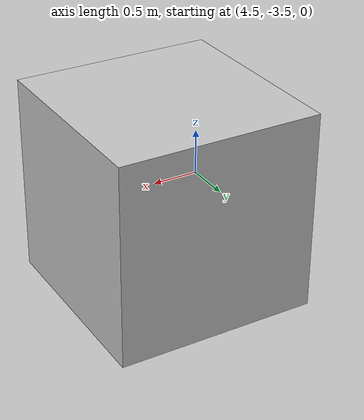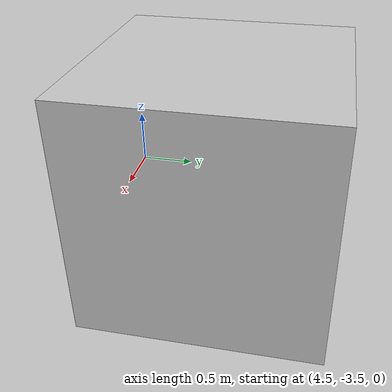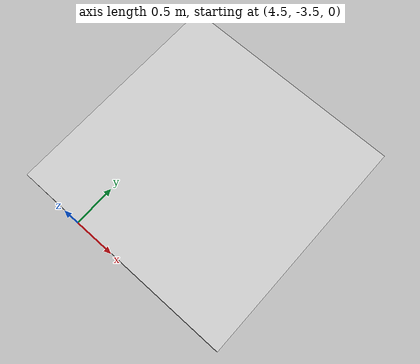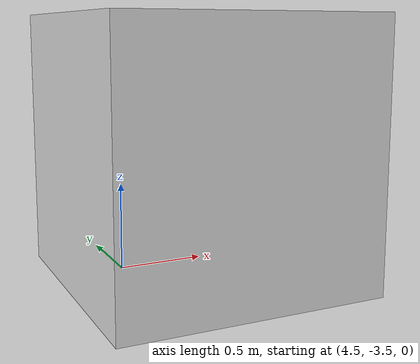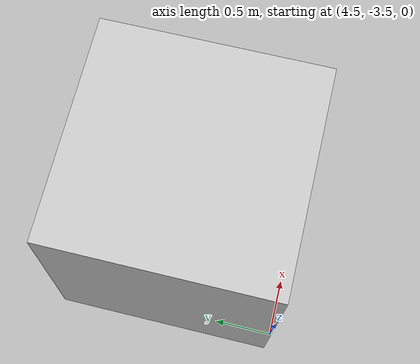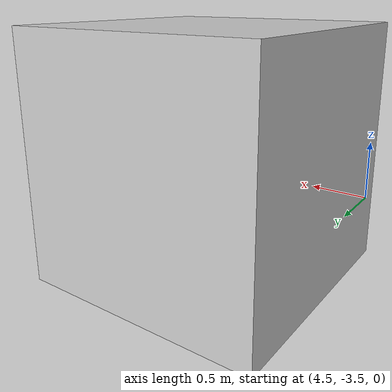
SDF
<?xml version="1.0" ?>
<sdf version="1.7">
<model name='unit_box'>
      <pose>5.45315 -2.49783 0.5 0 -0 0</pose>
      <link name='link'>
        <inertial>
          <mass>1</mass>
          <inertia>
            <ixx>0.166667</ixx>
            <ixy>0</ixy>
            <ixz>0</ixz>
            <iyy>0.166667</iyy>
            <iyz>0</iyz>
            <izz>0.166667</izz>
          </inertia>
          <pose>0 0 0 0 -0 0</pose>
        </inertial>
        <collision name='collision'>
          <geometry>
            <box>
              <size>1 1 1</size>
            </box>
          </geometry>
          <max_contacts>10</max_contacts>
          <surface>
            <contact>
              <ode/>
            </contact>
            <bounce/>
            <friction>
              <torsional>
                <ode/>
              </torsional>
              <ode/>
            </friction>
          </surface>
        </collision>
        <visual name='visual'>
          <geometry>
          <mesh>
          <uri>models://target3/meshes/target3.dae</uri>
          </mesh>
          </geometry>
          <material>
            <script>
              <name>targetMat3/Husky</name>
              <uri>models://target3/materials/scripts/target3.material</uri>
              <uri>models://target3/materials/textures/HuskyImg3.png</uri>
            </script>
          </material>
        </visual>
        <self_collide>0</self_collide>
        <enable_wind>0</enable_wind>
        <kinematic>0</kinematic>
      </link>
    </model>
    </sdf>
